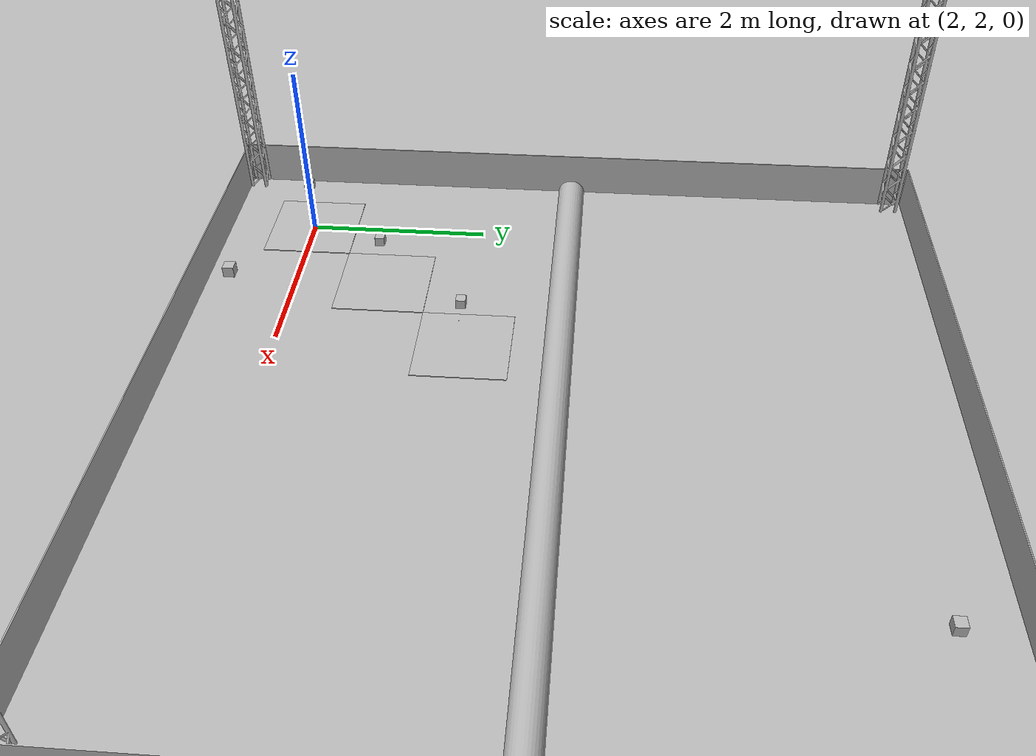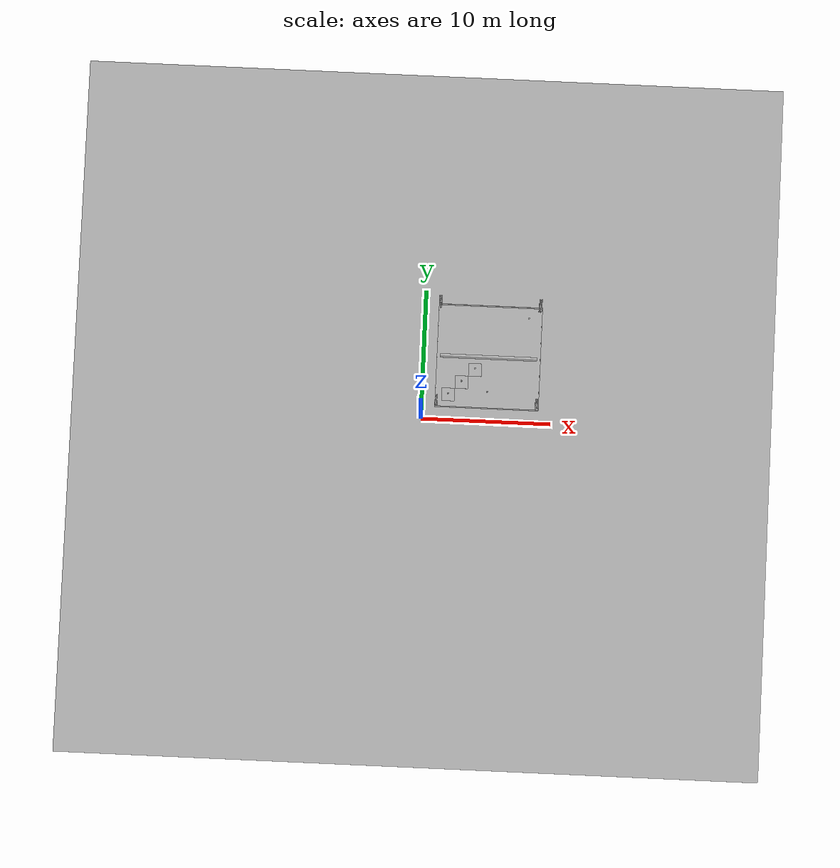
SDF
<?xml version="1.0" ?>
<?xml-model href="http://sdformat.org/schemas/root.xsd" schematypens="http://www.w3.org/2001/XMLSchema"?>
<sdf version="1.5">
  <world name="default">
    <plugin name="ros_interface_plugin" filename="librotors_gazebo_ros_interface_plugin.so"/>

    <!-- coordinate system {-->
    <spherical_coordinates>
      <surface_model>EARTH_WGS84</surface_model>
      <latitude_deg>37.411802</latitude_deg>
      <longitude_deg>-121.995739</longitude_deg>
      <elevation>0.0</elevation>
      <heading_deg>0</heading_deg>
    </spherical_coordinates>

    <!-- physics engine {-->
    <physics name="default_physics" default="0" type="ode">
      <gravity>0 0 -9.8066</gravity>
      <ode>
        <solver>
          <type>quick</type>
          <iters>10</iters>
          <sor>1.3</sor>
          <use_dynamic_moi_rescaling>0</use_dynamic_moi_rescaling>
        </solver>
        <constraints>z
          <cfm>0</cfm>
          <erp>0.2</erp>
          <contact_max_correcting_vel>1000</contact_max_correcting_vel>
          <contact_surface_layer>0.001</contact_surface_layer>
        </constraints>
      </ode>
      <max_step_size>0.004</max_step_size>
      <real_time_factor>1</real_time_factor>
      <real_time_update_rate>250</real_time_update_rate>
      <magnetic_field>6.0e-06 2.3e-05 -4.2e-05</magnetic_field>
    </physics>

    <!-- turn off shadows {-->
    <scene>
      <shadows>false</shadows>
      <sky>
        <clouds/>
      </sky>
    </scene>

    <!-- sun {-->
    <light type="directional" name="sun">
      <cast_shadows>true</cast_shadows>
      <pose>250 250 600 0 0 0</pose>
      <diffuse>0.8 0.8 0.8 1</diffuse>
      <specular>0.2 0.2 0.2 1</specular>
      <attenuation>
        <range>1000</range>
        <constant>0.9</constant>
        <linear>0.01</linear>
        <quadratic>0.001</quadratic>
      </attenuation>
      <direction>0 0 -1</direction>
    </light>

    <!-- ground plane {-->
    <model name="ground_plane">
      <static>true</static>
      <link name="link">
        <collision name="collision">
          <pose>0 0 0 0 0 0</pose>
          <geometry>
            <plane>
              <normal>0 0 1</normal>
              <size>250 250</size>
            </plane>
          </geometry>
          <surface>
            <friction>
              <ode>
                <mu>1</mu>
                <mu2>1</mu2>
              </ode>
            </friction>
          </surface>
        </collision>
        <visual name="grass">
          <pose>0 0 0 0 0 0</pose>
          <cast_shadows>false</cast_shadows>
          <geometry>
            <mesh>
              <uri>file://grass_plane/meshes/grass_plane.dae</uri>
            </mesh>
          </geometry>
        </visual>
      </link>
    </model>

    <!-- THE ARENA MODEL -->
      <include>
        <uri>model://arena_spawn</uri>
        <!-- Pose ( x y z r p y ) -->
        <pose frame=''>1 1 0.0005 0 -0 0</pose>
      </include>

    <!-- THE LAND BASE MODEL 1 -->
    <model name="land_base_1">
      <include>
        <uri>model://land_base</uri>
        <!-- Pose ( x y z r p y ) -->
        <pose frame=''>2 2 0.012 0 -0 0</pose>
      </include>
    </model>

    <!-- THE LAND BASE MODEL 2 -->
    <model name="land_base_2">
        <include>
          <uri>model://land_base</uri>
            <!-- Pose ( x y z r p y ) -->
          <pose frame=''>3 3 0.012 0 -0 0</pose>
        </include>
    </model>

      <!-- THE LAND BASE MODEL 3 -->
    <model name="land_base_3">
      <include>
        <uri>model://land_base</uri>
          <!-- Pose ( x y z r p y ) -->
        <pose frame=''>4 4 0.012 0 -0 0</pose>
      </include>
    </model>

    <!-- THE PIPE MODEL -->
    <model name="pipe">
      <include>
        <uri>model://pipe</uri>
          <!-- Pose ( x y z r p y ) -->
        <pose frame=''>5 5 0.0005 0 -0 0</pose>
      </include>
    </model>

    <!-- THE EQUIPMENT A MODEL -->
      <include>
        <uri>model://equipmentA</uri>
          <!-- Pose ( x y z r p y ) -->
        <pose frame=''>4 4 0.6 0 -0 0</pose>
      </include>

    <!-- THE EQUIPMENT B MODEL -->
      <include>
        <uri>model://equipmentB</uri>
          <!-- Pose ( x y z r p y ) -->
        <pose frame=''>3 3 0.6 0 -0 0</pose>
      </include>

    <!-- THE EQUIPMENT C MODEL -->
      <include>
        <uri>model://equipmentC</uri>
          <!-- Pose ( x y z r p y ) -->
        <pose frame=''>2 2 0.6 0 -0 0</pose>
      </include>

    <!-- THE EQUIPMENT D MODEL -->
      <include>
        <uri>model://equipmentD</uri>
          <!-- Pose ( x y z r p y ) -->
        <pose frame=''>5.0 2.08 1.67 0 -0 0</pose>
      </include>

    <!-- THE EQUIPMENT E MODEL -->
      <include>
        <uri>model://equipmentE</uri>
          <!-- Pose ( x y z r p y ) -->
        <pose frame=''>8 8 1.17 0 -0 0</pose>
      </include>

    <!-- THE VOID (for spawning objects out of camera view) {-->
    <model name='the_void'>
      <static>1</static>
      <link name='link'>
        <pose frame=''>0 0 0.1 0 -0 0</pose>
        <visual name='the_void'>
          <pose frame=''>0 0 2 0 -0 0</pose>
          <geometry>
            <sphere>
              <radius>0.25</radius>
            </sphere>
          </geometry>
          <material>
            <script>
              <uri>file://media/materials/scripts/Gazebo.material</uri>
              <name>Gazebo/Black</name>
            </script>
          </material>
        </visual>
        <self_collide>0</self_collide>
        <enable_wind>0</enable_wind>
        <kinematic>0</kinematic>
      </link>
      <pose frame=''>-1000 -1000 0 0 0 0</pose>
    </model>

    <!-- user camera {-->
    <gui>
      <camera name="camera">
        <pose>-60 -100 30 0 0.4 0.89</pose>
      </camera>
    </gui>

    <!-- gripper plugin  {-->
      <plugin name="ros_link_attacher_plugin" filename="libgazebo_ros_link_attacher.so"/>
    <!-- GUI frame synchronization {-->

  </world>
</sdf>

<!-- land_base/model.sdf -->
<sdf version='1.6'>
  <model name='land_base'>
    <link name='link_E'>
      <inertial>
        <mass>1</mass>
        <inertia>
          <ixx>0.166667</ixx>
          <ixy>0</ixy>
          <ixz>0</ixz>
          <iyy>0.166667</iyy>
          <iyz>0</iyz>
          <izz>0.166667</izz>
        </inertia>
      </inertial>
      <pose frame=''>0 0 0 0 -0 0</pose>
      <visual name='visual'>
        <pose frame=''>0 0 0 0 -0 0</pose>
        <geometry>
          <mesh>
            <uri>model://land_base/meshes/land_base_1.obj</uri>
            <scale>1 1 1</scale>
          </mesh>
        </geometry>
        <transparency>0</transparency>
        <cast_shadows>1</cast_shadows>
      </visual>
      <collision name='collision'>
        <laser_retro>0</laser_retro>
        <max_contacts>100</max_contacts>
        <pose frame=''>0 0 0 0 -0 0</pose>
        <geometry>
          <mesh>
            <uri>model://land_base/meshes/land_base_1.obj</uri>
            <scale>1 1 1</scale>
          </mesh>
        </geometry>
        <surface>
          <friction>
            <ode>
              <mu>100</mu>
              <mu2>100</mu2>
              <fdir1>0 0 0</fdir1>
              <slip1>0</slip1>
              <slip2>0</slip2>
            </ode>
            <torsional>
              <coefficient>1</coefficient>
              <patch_radius>1</patch_radius>
              <surface_radius>1</surface_radius>
              <use_patch_radius>1</use_patch_radius>
              <ode>
                <slip>0</slip>
              </ode>
            </torsional>
          </friction>
          <bounce>
            <restitution_coefficient>1</restitution_coefficient>
            <threshold>1e+06</threshold>
          </bounce>
          <contact>
            <collide_without_contact>0</collide_without_contact>
            <collide_without_contact_bitmask>1</collide_without_contact_bitmask>
            <collide_bitmask>1</collide_bitmask>
            <ode>
              <soft_cfm>0</soft_cfm>
              <soft_erp>0.2</soft_erp>
              <kp>1e+13</kp>
              <kd>1</kd>
              <max_vel>0.01</max_vel>
              <min_depth>0</min_depth>
            </ode>
            <bullet>
              <split_impulse>1</split_impulse>
              <split_impulse_penetration_threshold>-0.01</split_impulse_penetration_threshold>
              <soft_cfm>0</soft_cfm>
              <soft_erp>0.2</soft_erp>
              <kp>1e+13</kp>
              <kd>1</kd>
            </bullet>
          </contact>
        </surface>
      </collision>
    </link>
    <static>1</static>
    <allow_auto_disable>1</allow_auto_disable>
  </model>
</sdf>

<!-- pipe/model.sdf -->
<sdf version='1.6'>
  <model name='pipe'>
    <link name='link_0'>
      <inertial>
        <mass>1</mass>
        <inertia>
          <ixx>0.166667</ixx>
          <ixy>0</ixy>
          <ixz>0</ixz>
          <iyy>0.166667</iyy>
          <iyz>0</iyz>
          <izz>0.166667</izz>
        </inertia>
      </inertial>
      <pose frame=''>0 0 0 0 -0 0</pose>
      <visual name='visual'>
        <pose frame=''>0 0 0 0 -0 0</pose>
        <geometry>
          <mesh>
            <uri>model://pipe/meshes/pipe.obj</uri>
            <scale>1 1 1</scale>
          </mesh>
        </geometry>
        <transparency>0</transparency>
        <cast_shadows>1</cast_shadows>
      </visual>
      <collision name='collision'>
        <laser_retro>0</laser_retro>
        <max_contacts>10</max_contacts>
        <pose frame=''>0 0 0 0 -0 0</pose>
        <geometry>
          <mesh>
            <uri>model://pipe/meshes/pipe.obj</uri>
            <scale>1 1 1</scale>
          </mesh>
        </geometry>
        <surface>
          <friction>
            <ode>
              <mu>1</mu>
              <mu2>1</mu2>
              <fdir1>0 0 0</fdir1>
              <slip1>0</slip1>
              <slip2>0</slip2>
            </ode>
            <torsional>
              <coefficient>1</coefficient>
              <patch_radius>0</patch_radius>
              <surface_radius>0</surface_radius>
              <use_patch_radius>1</use_patch_radius>
              <ode>
                <slip>0</slip>
              </ode>
            </torsional>
          </friction>
          <bounce>
            <restitution_coefficient>0</restitution_coefficient>
            <threshold>1e+06</threshold>
          </bounce>
          <contact>
            <collide_without_contact>0</collide_without_contact>
            <collide_without_contact_bitmask>1</collide_without_contact_bitmask>
            <collide_bitmask>1</collide_bitmask>
            <ode>
              <soft_cfm>0</soft_cfm>
              <soft_erp>0.2</soft_erp>
              <kp>1e+13</kp>
              <kd>1</kd>
              <max_vel>0.01</max_vel>
              <min_depth>0</min_depth>
            </ode>
            <bullet>
              <split_impulse>1</split_impulse>
              <split_impulse_penetration_threshold>-0.01</split_impulse_penetration_threshold>
              <soft_cfm>0</soft_cfm>
              <soft_erp>0.2</soft_erp>
              <kp>1e+13</kp>
              <kd>1</kd>
            </bullet>
          </contact>
        </surface>
      </collision>
    </link>
    <static>1</static>
    <allow_auto_disable>1</allow_auto_disable>
  </model>
</sdf>

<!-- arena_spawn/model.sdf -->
<sdf version='1.6'>
  <model name='arena_spawn'>
    <link name='link_arena'>
      <inertial>
        <mass>15</mass>
        <inertia>
          <ixx>1</ixx>
          <ixy>1</ixy>
          <ixz>1</ixz>
          <iyy>1</iyy>
          <iyz>1</iyz>
          <izz>1</izz>
        </inertia>
      </inertial>
      <self_collide>1</self_collide>
      <enable_wind>0</enable_wind>
      <kinematic>0</kinematic>
      <pose frame=''>0 0 0 0 -0 0</pose>
      <visual name='visual'>
        <pose frame=''>0 0 0 0 -0 0</pose>
        <geometry>
          <mesh>
            <uri>model://arena_spawn/meshes/Arena.obj</uri>
            <scale>1 1 1</scale>
          </mesh>
        </geometry>
        <transparency>0</transparency>
        <cast_shadows>1</cast_shadows>
      </visual>
      <collision name='collision'>
        <laser_retro>0</laser_retro>
        <max_contacts>10</max_contacts>
        <pose frame=''>0 0 0 0 -0 0</pose>
        <geometry>
          <mesh>
            <uri>model://arena_spawn/meshes/Arena.obj</uri>
            <scale>1 1 1</scale>
          </mesh>
        </geometry>
        <surface>
          <friction>
            <ode>
              <mu>1</mu>
              <mu2>1</mu2>
              <fdir1>0 0 0</fdir1>
              <slip1>0</slip1>
              <slip2>0</slip2>
            </ode>
            <torsional>
              <coefficient>1</coefficient>
              <patch_radius>100</patch_radius>
              <surface_radius>100</surface_radius>
              <use_patch_radius>1</use_patch_radius>
              <ode>
                <slip>0</slip>
              </ode>
            </torsional>
          </friction>
          <bounce>
            <restitution_coefficient>0</restitution_coefficient>
            <threshold>1e+06</threshold>
          </bounce>
          <contact>
            <collide_without_contact>0</collide_without_contact>
            <collide_without_contact_bitmask>1</collide_without_contact_bitmask>
            <collide_bitmask>1</collide_bitmask>
            <ode>
              <soft_cfm>0</soft_cfm>
              <soft_erp>0.2</soft_erp>
              <kp>1e+13</kp>
              <kd>1</kd>
              <max_vel>0.01</max_vel>
              <min_depth>0</min_depth>
            </ode>
            <bullet>
              <split_impulse>1</split_impulse>
              <split_impulse_penetration_threshold>-0.01</split_impulse_penetration_threshold>
              <soft_cfm>0</soft_cfm>
              <soft_erp>0.2</soft_erp>
              <kp>1e+13</kp>
              <kd>1</kd>
            </bullet>
          </contact>
        </surface>
      </collision>
    </link>
    <link name='pilar_1'>
      <inertial>
        <mass>1</mass>
        <inertia>
          <ixx>0.166667</ixx>
          <ixy>0</ixy>
          <ixz>0</ixz>
          <iyy>0.166667</iyy>
          <iyz>0</iyz>
          <izz>0.166667</izz>
        </inertia>
      </inertial>
      <self_collide>1</self_collide>
      <enable_wind>0</enable_wind>
      <kinematic>0</kinematic>
      <pose frame=''>0 0 0 0 -0 0</pose>
      <visual name='visual'>
        <pose frame=''>0 0 0 0 -0 0</pose>
        <geometry>
          <mesh>
            <uri>model://arena_spawn/meshes/pilar.obj</uri>
            <scale>1 1 1</scale>
          </mesh>
        </geometry>
        <transparency>0</transparency>
        <cast_shadows>1</cast_shadows>
      </visual>
      <collision name='collision'>
        <laser_retro>0</laser_retro>
        <max_contacts>10</max_contacts>
        <pose frame=''>0 0 0 0 -0 0</pose>
        <geometry>
          <mesh>
            <uri>model://arena_spawn/meshes/pilar.obj</uri>
            <scale>1 1 1</scale>
          </mesh>
        </geometry>
        <surface>
          <friction>
            <ode>
              <mu>1</mu>
              <mu2>1</mu2>
              <fdir1>0 0 0</fdir1>
              <slip1>0</slip1>
              <slip2>0</slip2>
            </ode>
            <torsional>
              <coefficient>1</coefficient>
              <patch_radius>100</patch_radius>
              <surface_radius>100</surface_radius>
              <use_patch_radius>1</use_patch_radius>
              <ode>
                <slip>0</slip>
              </ode>
            </torsional>
          </friction>
          <bounce>
            <restitution_coefficient>0</restitution_coefficient>
            <threshold>1e+06</threshold>
          </bounce>
          <contact>
            <collide_without_contact>0</collide_without_contact>
            <collide_without_contact_bitmask>1</collide_without_contact_bitmask>
            <collide_bitmask>1</collide_bitmask>
            <ode>
              <soft_cfm>0</soft_cfm>
              <soft_erp>0.2</soft_erp>
              <kp>1e+13</kp>
              <kd>1</kd>
              <max_vel>0.01</max_vel>
              <min_depth>0</min_depth>
            </ode>
            <bullet>
              <split_impulse>1</split_impulse>
              <split_impulse_penetration_threshold>-0.01</split_impulse_penetration_threshold>
              <soft_cfm>0</soft_cfm>
              <soft_erp>0.2</soft_erp>
              <kp>1e+13</kp>
              <kd>1</kd>
            </bullet>
          </contact>
        </surface>
      </collision>
    </link>
    <link name='pilar_2'>
      <inertial>
        <mass>1</mass>
        <inertia>
          <ixx>0.166667</ixx>
          <ixy>0</ixy>
          <ixz>0</ixz>
          <iyy>0.166667</iyy>
          <iyz>0</iyz>
          <izz>0.166667</izz>
        </inertia>
      </inertial>
      <self_collide>1</self_collide>
      <enable_wind>0</enable_wind>
      <kinematic>0</kinematic>
      <pose frame=''>7.7 0 0 0 -0 0</pose>
      <visual name='visual'>
        <pose frame=''>0 0 0 0 -0 0</pose>
        <geometry>
          <mesh>
            <uri>model://arena_spawn/meshes/pilar.obj</uri>
            <scale>1 1 1</scale>
          </mesh>
        </geometry>
        <transparency>0</transparency>
        <cast_shadows>1</cast_shadows>
      </visual>
      <collision name='collision'>
        <laser_retro>0</laser_retro>
        <max_contacts>10</max_contacts>
        <pose frame=''>0 0 0 0 -0 0</pose>
        <geometry>
          <mesh>
            <uri>model://arena_spawn/meshes/pilar.obj</uri>
            <scale>1 1 1</scale>
          </mesh>
        </geometry>
        <surface>
          <friction>
            <ode>
              <mu>1</mu>
              <mu2>1</mu2>
              <fdir1>0 0 0</fdir1>
              <slip1>0</slip1>
              <slip2>0</slip2>
            </ode>
            <torsional>
              <coefficient>1</coefficient>
              <patch_radius>100</patch_radius>
              <surface_radius>100</surface_radius>
              <use_patch_radius>1</use_patch_radius>
              <ode>
                <slip>0</slip>
              </ode>
            </torsional>
          </friction>
          <bounce>
            <restitution_coefficient>0</restitution_coefficient>
            <threshold>1e+06</threshold>
          </bounce>
          <contact>
            <collide_without_contact>0</collide_without_contact>
            <collide_without_contact_bitmask>1</collide_without_contact_bitmask>
            <collide_bitmask>1</collide_bitmask>
            <ode>
              <soft_cfm>0</soft_cfm>
              <soft_erp>0.2</soft_erp>
              <kp>1e+13</kp>
              <kd>1</kd>
              <max_vel>0.01</max_vel>
              <min_depth>0</min_depth>
            </ode>
            <bullet>
              <split_impulse>1</split_impulse>
              <split_impulse_penetration_threshold>-0.01</split_impulse_penetration_threshold>
              <soft_cfm>0</soft_cfm>
              <soft_erp>0.2</soft_erp>
              <kp>1e+13</kp>
              <kd>1</kd>
            </bullet>
          </contact>
        </surface>
      </collision>
    </link>
    <link name='pilar_3'>
      <inertial>
        <mass>1</mass>
        <inertia>
          <ixx>0.166667</ixx>
          <ixy>0</ixy>
          <ixz>0</ixz>
          <iyy>0.166667</iyy>
          <iyz>0</iyz>
          <izz>0.166667</izz>
        </inertia>
      </inertial>
      <self_collide>1</self_collide>
      <enable_wind>0</enable_wind>
      <kinematic>0</kinematic>
      <pose frame=''>0 7.7 0 0 -0 0</pose>
      <visual name='visual'>
        <pose frame=''>0 0 0 0 -0 0</pose>
        <geometry>
          <mesh>
            <uri>model://arena_spawn/meshes/pilar.obj</uri>
            <scale>1 1 1</scale>
          </mesh>
        </geometry>
        <transparency>0</transparency>
        <cast_shadows>1</cast_shadows>
      </visual>
      <collision name='collision'>
        <laser_retro>0</laser_retro>
        <max_contacts>10</max_contacts>
        <pose frame=''>0 0 0 0 -0 0</pose>
        <geometry>
          <mesh>
            <uri>model://arena_spawn/meshes/pilar.obj</uri>
            <scale>1 1 1</scale>
          </mesh>
        </geometry>
        <surface>
          <friction>
            <ode>
              <mu>1</mu>
              <mu2>1</mu2>
              <fdir1>0 0 0</fdir1>
              <slip1>0</slip1>
              <slip2>0</slip2>
            </ode>
            <torsional>
              <coefficient>1</coefficient>
              <patch_radius>100</patch_radius>
              <surface_radius>100</surface_radius>
              <use_patch_radius>1</use_patch_radius>
              <ode>
                <slip>0</slip>
              </ode>
            </torsional>
          </friction>
          <bounce>
            <restitution_coefficient>0</restitution_coefficient>
            <threshold>1e+06</threshold>
          </bounce>
          <contact>
            <collide_without_contact>0</collide_without_contact>
            <collide_without_contact_bitmask>1</collide_without_contact_bitmask>
            <collide_bitmask>1</collide_bitmask>
            <ode>
              <soft_cfm>0</soft_cfm>
              <soft_erp>0.2</soft_erp>
              <kp>1e+13</kp>
              <kd>1</kd>
              <max_vel>0.01</max_vel>
              <min_depth>0</min_depth>
            </ode>
            <bullet>
              <split_impulse>1</split_impulse>
              <split_impulse_penetration_threshold>-0.01</split_impulse_penetration_threshold>
              <soft_cfm>0</soft_cfm>
              <soft_erp>0.2</soft_erp>
              <kp>1e+13</kp>
              <kd>1</kd>
            </bullet>
          </contact>
        </surface>
      </collision>
    </link>
    <link name='pilar_4'>
      <inertial>
        <mass>1</mass>
        <inertia>
          <ixx>0.166667</ixx>
          <ixy>0</ixy>
          <ixz>0</ixz>
          <iyy>0.166667</iyy>
          <iyz>0</iyz>
          <izz>0.166667</izz>
        </inertia>
      </inertial>
      <self_collide>1</self_collide>
      <enable_wind>0</enable_wind>
      <kinematic>0</kinematic>
      <pose frame=''>7.7 7.7 0 0 -0 0</pose>
      <visual name='visual'>
        <pose frame=''>0 0 0 0 -0 0</pose>
        <geometry>
          <mesh>
            <uri>model://arena_spawn/meshes/pilar.obj</uri>
            <scale>1 1 1</scale>
          </mesh>
        </geometry>
        <transparency>0</transparency>
        <cast_shadows>1</cast_shadows>
      </visual>
      <collision name='collision'>
        <laser_retro>0</laser_retro>
        <max_contacts>10</max_contacts>
        <pose frame=''>0 0 0 0 -0 0</pose>
        <geometry>
          <mesh>
            <uri>model://arena_spawn/meshes/pilar.obj</uri>
            <scale>1 1 1</scale>
          </mesh>
        </geometry>
        <surface>
          <friction>
            <ode>
              <mu>1</mu>
              <mu2>1</mu2>
              <fdir1>0 0 0</fdir1>
              <slip1>0</slip1>
              <slip2>0</slip2>
            </ode>
            <torsional>
              <coefficient>1</coefficient>
              <patch_radius>100</patch_radius>
              <surface_radius>100</surface_radius>
              <use_patch_radius>1</use_patch_radius>
              <ode>
                <slip>0</slip>
              </ode>
            </torsional>
          </friction>
          <bounce>
            <restitution_coefficient>0</restitution_coefficient>
            <threshold>1e+06</threshold>
          </bounce>
          <contact>
            <collide_without_contact>0</collide_without_contact>
            <collide_without_contact_bitmask>1</collide_without_contact_bitmask>
            <collide_bitmask>1</collide_bitmask>
            <ode>
              <soft_cfm>0</soft_cfm>
              <soft_erp>0.2</soft_erp>
              <kp>1e+13</kp>
              <kd>1</kd>
              <max_vel>0.01</max_vel>
              <min_depth>0</min_depth>
            </ode>
            <bullet>
              <split_impulse>1</split_impulse>
              <split_impulse_penetration_threshold>-0.01</split_impulse_penetration_threshold>
              <soft_cfm>0</soft_cfm>
              <soft_erp>0.2</soft_erp>
              <kp>1e+13</kp>
              <kd>1</kd>
            </bullet>
          </contact>
        </surface>
      </collision>
    </link>
    <static>1</static>
    <pose frame=''>0 0 0.0005 0 -0 0</pose>
  </model>
</sdf>

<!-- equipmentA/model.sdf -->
<sdf version='1.6'>
  <model name='equipmentA'>
    <link name='link_A'>
      <inertial>
        <mass>0.00157</mass>
        <inertia>
          <ixx>0.000261667</ixx>
          <ixy>0</ixy>
          <ixz>0</ixz>
          <iyy>0.000261667</iyy>
          <iyz>0</iyz>
          <izz>0.000261667</izz>
        </inertia>
        <pose>0 0 0 0 -0 0</pose>
      </inertial>
      <self_collide>0</self_collide>
      <enable_wind>0</enable_wind>
      <kinematic>0</kinematic>
      <pose>0 0 0 0 -0 0</pose>
      <gravity>1</gravity>
      <visual name='visual'>
        <pose frame=''>0 0 0 0 -0 0</pose>
        <geometry>
          <mesh>
            <uri>model://equipmentA/meshes/equipment_A.obj</uri>
            <scale>1 1 1</scale>
          </mesh>
        </geometry>
        <transparency>0</transparency>
        <cast_shadows>1</cast_shadows>
      </visual>
      <collision name='collision'>
        <laser_retro>1</laser_retro>
        <max_contacts>100000</max_contacts>
        <pose>0 0 0 0 -0 0</pose>
        <geometry>
          <box>
            <size>0.1 0.1 0.1</size>
          </box>
        </geometry>
        <surface>
          <friction>
            <ode>
              <mu>1</mu>
              <mu2>1</mu2>
              <fdir1>0 0 0</fdir1>
              <slip1>0</slip1>
              <slip2>0</slip2>
            </ode>
            <torsional>
              <coefficient>1</coefficient>
              <patch_radius>1</patch_radius>
              <surface_radius>1</surface_radius>
              <use_patch_radius>1</use_patch_radius>
              <ode>
                <slip>0</slip>
              </ode>
            </torsional>
          </friction>
          <bounce>
            <restitution_coefficient>0</restitution_coefficient>
            <threshold>1e+06</threshold>
          </bounce>
          <contact>
            <collide_without_contact>0</collide_without_contact>
            <collide_without_contact_bitmask>1</collide_without_contact_bitmask>
            <collide_bitmask>1</collide_bitmask>
            <ode>
              <soft_cfm>0</soft_cfm>
              <soft_erp>0.2</soft_erp>
              <kp>1e+13</kp>
              <kd>1</kd>
              <max_vel>0.01</max_vel>
              <min_depth>0</min_depth>
            </ode>
            <bullet>
              <split_impulse>1</split_impulse>
              <split_impulse_penetration_threshold>-0.01</split_impulse_penetration_threshold>
              <soft_cfm>0</soft_cfm>
              <soft_erp>0.2</soft_erp>
              <kp>1e+13</kp>
              <kd>1</kd>
            </bullet>
          </contact>
        </surface>
      </collision>
    </link>
    <static>0</static>
    <allow_auto_disable>1</allow_auto_disable>
  </model>
</sdf>

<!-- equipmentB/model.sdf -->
<sdf version='1.6'>
  <model name='equipmentB'>
    <link name='link_B'>
      <inertial>
        <mass>0.00157</mass>
        <inertia>
          <ixx>0.000261667</ixx>
          <ixy>0</ixy>
          <ixz>0</ixz>
          <iyy>0.000261667</iyy>
          <iyz>0</iyz>
          <izz>0.000261667</izz>
        </inertia>
        <pose>0 0 0 0 -0 0</pose>
      </inertial>
      <self_collide>0</self_collide>
      <enable_wind>0</enable_wind>
      <kinematic>0</kinematic>
      <pose>0 0 0 0 -0 0</pose>
      <gravity>1</gravity>
      <visual name='visual'>
        <pose frame=''>0 0 0 0 -0 0</pose>
        <geometry>
          <mesh>
            <uri>model://equipmentB/meshes/equipment_B.obj</uri>
            <scale>1 1 1</scale>
          </mesh>
        </geometry>
        <transparency>0</transparency>
        <cast_shadows>1</cast_shadows>
      </visual>
      <collision name='collision'>
        <laser_retro>1</laser_retro>
        <max_contacts>100000</max_contacts>
        <pose>0 0 0 0 -0 0</pose>
        <geometry>
          <box>
            <size>0.1 0.1 0.1</size>
          </box>
        </geometry>
        <surface>
          <friction>
            <ode>
              <mu>1</mu>
              <mu2>1</mu2>
              <fdir1>0 0 0</fdir1>
              <slip1>0</slip1>
              <slip2>0</slip2>
            </ode>
            <torsional>
              <coefficient>1</coefficient>
              <patch_radius>1</patch_radius>
              <surface_radius>1</surface_radius>
              <use_patch_radius>1</use_patch_radius>
              <ode>
                <slip>0</slip>
              </ode>
            </torsional>
          </friction>
          <bounce>
            <restitution_coefficient>0</restitution_coefficient>
            <threshold>1e+06</threshold>
          </bounce>
          <contact>
            <collide_without_contact>0</collide_without_contact>
            <collide_without_contact_bitmask>1</collide_without_contact_bitmask>
            <collide_bitmask>1</collide_bitmask>
            <ode>
              <soft_cfm>0</soft_cfm>
              <soft_erp>0.2</soft_erp>
              <kp>1e+13</kp>
              <kd>1</kd>
              <max_vel>0.01</max_vel>
              <min_depth>0</min_depth>
            </ode>
            <bullet>
              <split_impulse>1</split_impulse>
              <split_impulse_penetration_threshold>-0.01</split_impulse_penetration_threshold>
              <soft_cfm>0</soft_cfm>
              <soft_erp>0.2</soft_erp>
              <kp>1e+13</kp>
              <kd>1</kd>
            </bullet>
          </contact>
        </surface>
      </collision>
    </link>
    <static>0</static>
    <allow_auto_disable>1</allow_auto_disable>
  </model>
</sdf>

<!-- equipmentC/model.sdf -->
<sdf version='1.6'>
  <model name='equipmentC'>
    <link name='link_C'>
      <inertial>
        <mass>0.00157</mass>
        <inertia>
          <ixx>0.000261667</ixx>
          <ixy>0</ixy>
          <ixz>0</ixz>
          <iyy>0.000261667</iyy>
          <iyz>0</iyz>
          <izz>0.000261667</izz>
        </inertia>
        <pose>0 0 0 0 -0 0</pose>
      </inertial>
      <self_collide>0</self_collide>
      <enable_wind>0</enable_wind>
      <kinematic>0</kinematic>
      <pose>0 0 0 0 -0 0</pose>
      <gravity>1</gravity>
      <visual name='visual'>
        <pose frame=''>0 0 0 0 -0 0</pose>
        <geometry>
          <mesh>
            <uri>model://equipmentC/meshes/equipment_C.obj</uri>
            <scale>1 1 1</scale>
          </mesh>
        </geometry>
        <transparency>0</transparency>
        <cast_shadows>1</cast_shadows>
      </visual>
      <collision name='collision'>
        <laser_retro>1</laser_retro>
        <max_contacts>100000</max_contacts>
        <pose>0 0 0 0 -0 0</pose>
        <geometry>
          <box>
            <size>0.1 0.1 0.1</size>
          </box>
        </geometry>
        <surface>
          <friction>
            <ode>
              <mu>1</mu>
              <mu2>1</mu2>
              <fdir1>0 0 0</fdir1>
              <slip1>0</slip1>
              <slip2>0</slip2>
            </ode>
            <torsional>
              <coefficient>1</coefficient>
              <patch_radius>1</patch_radius>
              <surface_radius>1</surface_radius>
              <use_patch_radius>1</use_patch_radius>
              <ode>
                <slip>0</slip>
              </ode>
            </torsional>
          </friction>
          <bounce>
            <restitution_coefficient>0</restitution_coefficient>
            <threshold>1e+06</threshold>
          </bounce>
          <contact>
            <collide_without_contact>0</collide_without_contact>
            <collide_without_contact_bitmask>1</collide_without_contact_bitmask>
            <collide_bitmask>1</collide_bitmask>
            <ode>
              <soft_cfm>0</soft_cfm>
              <soft_erp>0.2</soft_erp>
              <kp>1e+13</kp>
              <kd>1</kd>
              <max_vel>0.01</max_vel>
              <min_depth>0</min_depth>
            </ode>
            <bullet>
              <split_impulse>1</split_impulse>
              <split_impulse_penetration_threshold>-0.01</split_impulse_penetration_threshold>
              <soft_cfm>0</soft_cfm>
              <soft_erp>0.2</soft_erp>
              <kp>1e+13</kp>
              <kd>1</kd>
            </bullet>
          </contact>
        </surface>
      </collision>
    </link>
    <static>0</static>
    <allow_auto_disable>1</allow_auto_disable>
  </model>
</sdf>

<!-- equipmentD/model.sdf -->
<sdf version='1.6'>
  <model name='equipmentD'>
    <link name='link_D'>
      <inertial>
        <mass>0.00157</mass>
        <inertia>
          <ixx>0.000261667</ixx>
          <ixy>0</ixy>
          <ixz>0</ixz>
          <iyy>0.000261667</iyy>
          <iyz>0</iyz>
          <izz>0.000261667</izz>
        </inertia>
        <pose>0 0 0 0 -0 0</pose>
      </inertial>
      <self_collide>0</self_collide>
      <enable_wind>0</enable_wind>
      <kinematic>0</kinematic>
      <pose>0 0 0 0 -0 0</pose>
      <gravity>1</gravity>
      <visual name='visual'>
        <pose frame=''>0 0 0 0 -0 0</pose>
        <geometry>
          <mesh>
            <uri>model://equipmentD/meshes/equipment_D.obj</uri>
            <scale>1 1 1</scale>
          </mesh>
        </geometry>
        <transparency>0</transparency>
        <cast_shadows>1</cast_shadows>
      </visual>
      <collision name='collision'>
        <laser_retro>1</laser_retro>
        <max_contacts>100000</max_contacts>
        <pose>0 0 0 0 -0 0</pose>
        <geometry>
          <box>
            <size>0.1 0.1 0.1</size>
          </box>
        </geometry>
        <surface>
          <friction>
            <ode>
              <mu>1</mu>
              <mu2>1</mu2>
              <fdir1>0 0 0</fdir1>
              <slip1>0</slip1>
              <slip2>0</slip2>
            </ode>
            <torsional>
              <coefficient>1</coefficient>
              <patch_radius>1</patch_radius>
              <surface_radius>1</surface_radius>
              <use_patch_radius>1</use_patch_radius>
              <ode>
                <slip>0</slip>
              </ode>
            </torsional>
          </friction>
          <bounce>
            <restitution_coefficient>0</restitution_coefficient>
            <threshold>1e+06</threshold>
          </bounce>
          <contact>
            <collide_without_contact>0</collide_without_contact>
            <collide_without_contact_bitmask>1</collide_without_contact_bitmask>
            <collide_bitmask>1</collide_bitmask>
            <ode>
              <soft_cfm>0</soft_cfm>
              <soft_erp>0.2</soft_erp>
              <kp>1e+13</kp>
              <kd>1</kd>
              <max_vel>0.01</max_vel>
              <min_depth>0</min_depth>
            </ode>
            <bullet>
              <split_impulse>1</split_impulse>
              <split_impulse_penetration_threshold>-0.01</split_impulse_penetration_threshold>
              <soft_cfm>0</soft_cfm>
              <soft_erp>0.2</soft_erp>
              <kp>1e+13</kp>
              <kd>1</kd>
            </bullet>
          </contact>
        </surface>
      </collision>
    </link>
    <static>0</static>
    <allow_auto_disable>1</allow_auto_disable>
  </model>
</sdf>

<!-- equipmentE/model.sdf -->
<sdf version='1.6'>
  <model name='equipmentE'>
    <link name='link_E'>
      <inertial>
        <mass>0.00157</mass>
        <inertia>
          <ixx>0.000261667</ixx>
          <ixy>0</ixy>
          <ixz>0</ixz>
          <iyy>0.000261667</iyy>
          <iyz>0</iyz>
          <izz>0.000261667</izz>
        </inertia>
        <pose>0 0 0 0 -0 0</pose>
      </inertial>
      <self_collide>0</self_collide>
      <enable_wind>0</enable_wind>
      <kinematic>0</kinematic>
      <pose>0 0 0 0 -0 0</pose>
      <gravity>1</gravity>
      <visual name='visual'>
        <pose frame=''>0 0 0 0 -0 0</pose>
        <geometry>
          <mesh>
            <uri>model://equipmentE/meshes/equipment_E.obj</uri>
            <scale>1 1 1</scale>
          </mesh>
        </geometry>
        <transparency>0</transparency>
        <cast_shadows>1</cast_shadows>
      </visual>
      <collision name='collision'>
        <laser_retro>1</laser_retro>
        <max_contacts>100000</max_contacts>
        <pose>0 0 0 0 -0 0</pose>
        <geometry>
          <box>
            <size>0.1 0.1 0.1</size>
          </box>
        </geometry>
        <surface>
          <friction>
            <ode>
              <mu>1</mu>
              <mu2>1</mu2>
              <fdir1>0 0 0</fdir1>
              <slip1>0</slip1>
              <slip2>0</slip2>
            </ode>
            <torsional>
              <coefficient>1</coefficient>
              <patch_radius>1</patch_radius>
              <surface_radius>1</surface_radius>
              <use_patch_radius>1</use_patch_radius>
              <ode>
                <slip>0</slip>
              </ode>
            </torsional>
          </friction>
          <bounce>
            <restitution_coefficient>0</restitution_coefficient>
            <threshold>1e+06</threshold>
          </bounce>
          <contact>
            <collide_without_contact>0</collide_without_contact>
            <collide_without_contact_bitmask>1</collide_without_contact_bitmask>
            <collide_bitmask>1</collide_bitmask>
            <ode>
              <soft_cfm>0</soft_cfm>
              <soft_erp>0.2</soft_erp>
              <kp>1e+13</kp>
              <kd>1</kd>
              <max_vel>0.01</max_vel>
              <min_depth>0</min_depth>
            </ode>
            <bullet>
              <split_impulse>1</split_impulse>
              <split_impulse_penetration_threshold>-0.01</split_impulse_penetration_threshold>
              <soft_cfm>0</soft_cfm>
              <soft_erp>0.2</soft_erp>
              <kp>1e+13</kp>
              <kd>1</kd>
            </bullet>
          </contact>
        </surface>
      </collision>
    </link>
    <static>0</static>
    <allow_auto_disable>1</allow_auto_disable>
  </model>
</sdf>
